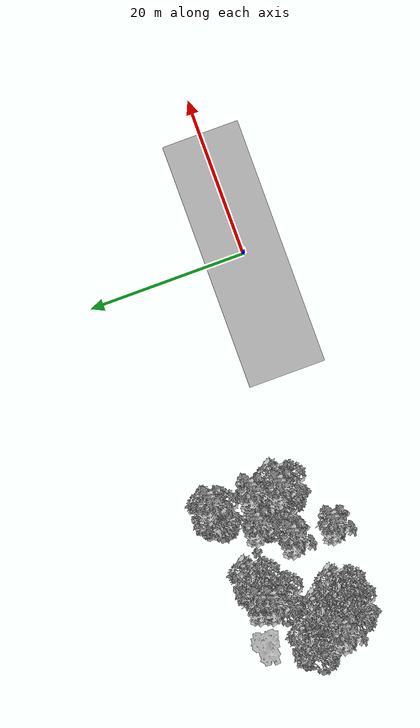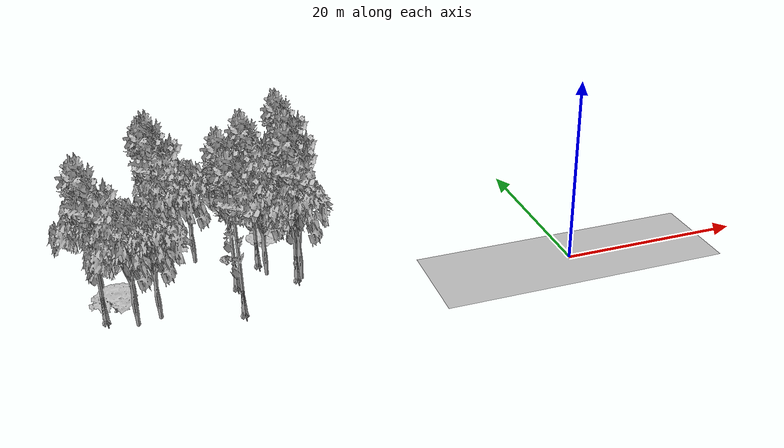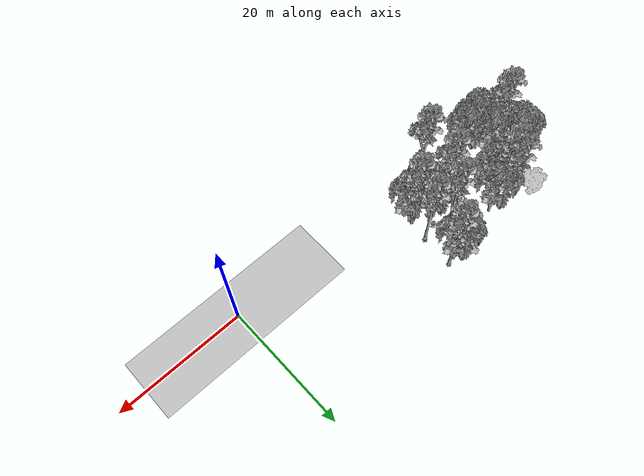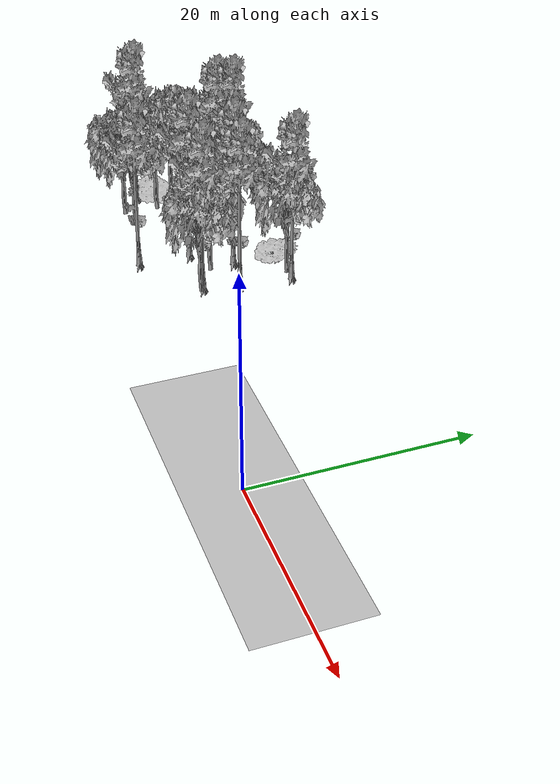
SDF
<sdf version="1.7">
 <world name="default">
  <model name="ground_plane">
   <static>1</static>
   <link name="link">
    <collision name="collision">
     <pose>-50 0 0 0 -0 0</pose>
     <geometry><plane><normal>0 0 1</normal><size>100 100</size></plane></geometry>
     <surface><contact><ode><min_depth>0.01</min_depth><max_vel>0</max_vel></ode></contact></surface>
    </collision>
    <visual name="grass">
     <cast_shadows>0</cast_shadows>
     <geometry>
      <mesh>
       <scale>0.5814285714285714 0.18142857142857144 0.1</scale>
       <uri>file://grass_plane/meshes/grass_plane.dae</uri>
      </mesh>
     </geometry>
    </visual>
   </link>
  </model>
  <model name="Tree 3">
   <static>1</static>
   <pose>-31.481385527673343 7.390100889595605 0 1.57079 -0 0</pose>
   <link name="link">
    <collision name="collision">
     <geometry><mesh><scale>3.5 5 3.5</scale><uri>model://tree_2/meshes/tree_2.obj</uri></mesh></geometry>
    </collision>
    <visual name="visual">
     <geometry><mesh><scale>3.5 5 3.5</scale><uri>model://tree_2/meshes/tree_2.obj</uri></mesh></geometry>
    </visual>
   </link>
  </model>
  <model name="Tree 8">
   <static>1</static>
   <pose>-34.72252910490241 6.281720493063954 0 1.57079 -0 0</pose>
   <link name="link">
    <collision name="collision">
     <geometry><mesh><scale>3.5 5 3.5</scale><uri>model://tree_9/meshes/tree_9.obj</uri></mesh></geometry>
    </collision>
    <visual name="visual">
     <geometry><mesh><scale>3.5 5 3.5</scale><uri>model://tree_9/meshes/tree_9.obj</uri></mesh></geometry>
    </visual>
   </link>
  </model>
  <model name="Tree 14">
   <static>1</static>
   <pose>-40.880451458060946 12.764865354557013 0 1.57079 -0 0</pose>
   <link name="link">
    <collision name="collision">
     <geometry><mesh><scale>3.5 5 3.5</scale><uri>model://tree_9/meshes/tree_9.obj</uri></mesh></geometry>
    </collision>
    <visual name="visual">
     <geometry><mesh><scale>3.5 5 3.5</scale><uri>model://tree_9/meshes/tree_9.obj</uri></mesh></geometry>
    </visual>
   </link>
  </model>
  <model name="Tree 33">
   <static>1</static>
   <pose>-38.20391990140483 12.369561402918748 0 1.57079 -0 0</pose>
   <link name="link">
    <collision name="collision">
     <geometry><mesh><scale>3.5 5 3.5</scale><uri>model://tree_2/meshes/tree_2.obj</uri></mesh></geometry>
    </collision>
    <visual name="visual">
     <geometry><mesh><scale>3.5 5 3.5</scale><uri>model://tree_2/meshes/tree_2.obj</uri></mesh></geometry>
    </visual>
   </link>
  </model>
  <model name="Tree 43">
   <static>1</static>
   <pose>-47.622293033828235 4.44104296170822 0 1.57079 -0 0</pose>
   <link name="link">
    <collision name="collision">
     <geometry><mesh><scale>3.5 5 3.5</scale><uri>model://tree_9/meshes/tree_9.obj</uri></mesh></geometry>
    </collision>
    <visual name="visual">
     <geometry><mesh><scale>3.5 5 3.5</scale><uri>model://tree_9/meshes/tree_9.obj</uri></mesh></geometry>
    </visual>
   </link>
  </model>
  <model name="Tree 49">
   <static>1</static>
   <pose>-46.39853776990978 13.50395326499055 0 1.57079 -0 0</pose>
   <link name="link">
    <collision name="collision">
     <geometry><mesh><scale>3 2 3</scale><uri>model://tree_3/meshes/tree_3.obj</uri></mesh></geometry>
    </collision>
    <visual name="visual">
     <geometry><mesh><scale>3 2 3</scale><uri>model://tree_3/meshes/tree_3.obj</uri></mesh></geometry>
    </visual>
   </link>
  </model>
  <model name="Tree 52">
   <static>1</static>
   <pose>-31.878450718677136 9.904338914191474 0 1.57079 -0 0</pose>
   <link name="link">
    <collision name="collision">
     <geometry><mesh><scale>3.5 5 3.5</scale><uri>model://tree_9/meshes/tree_9.obj</uri></mesh></geometry>
    </collision>
    <visual name="visual">
     <geometry><mesh><scale>3.5 5 3.5</scale><uri>model://tree_9/meshes/tree_9.obj</uri></mesh></geometry>
    </visual>
   </link>
  </model>
  <model name="Tree 65">
   <static>1</static>
   <pose>-44.77162462262486 5.788172271483528 0 1.57079 -0 0</pose>
   <link name="link">
    <collision name="collision">
     <geometry><mesh><scale>3.5 5 3.5</scale><uri>model://tree_2/meshes/tree_2.obj</uri></mesh></geometry>
    </collision>
    <visual name="visual">
     <geometry><mesh><scale>3.5 5 3.5</scale><uri>model://tree_2/meshes/tree_2.obj</uri></mesh></geometry>
    </visual>
   </link>
  </model>
  <model name="Tree 80">
   <static>1</static>
   <pose>-47.72107241561221 8.223956834752286 0 1.57079 -0 0</pose>
   <link name="link">
    <collision name="collision">
     <geometry><mesh><scale>3.5 5 3.5</scale><uri>model://tree_2/meshes/tree_2.obj</uri></mesh></geometry>
    </collision>
    <visual name="visual">
     <geometry><mesh><scale>3.5 5 3.5</scale><uri>model://tree_2/meshes/tree_2.obj</uri></mesh></geometry>
    </visual>
   </link>
  </model>
  <model name="Tree 97">
   <static>1</static>
   <pose>-46.60096022170873 5.637893205361678 0 1.57079 -0 0</pose>
   <link name="link">
    <collision name="collision">
     <geometry><mesh><scale>3 2 3</scale><uri>model://tree_3/meshes/tree_3.obj</uri></mesh></geometry>
    </collision>
    <visual name="visual">
     <geometry><mesh><scale>3 2 3</scale><uri>model://tree_3/meshes/tree_3.obj</uri></mesh></geometry>
    </visual>
   </link>
  </model>
  <model name="Tree 100">
   <static>1</static>
   <pose>-28.53290180158267 5.758255386338558 0 1.57079 -0 0</pose>
   <link name="link">
    <collision name="collision">
     <geometry><mesh><scale>3.5 5 3.5</scale><uri>model://tree_9/meshes/tree_9.obj</uri></mesh></geometry>
    </collision>
    <visual name="visual">
     <geometry><mesh><scale>3.5 5 3.5</scale><uri>model://tree_9/meshes/tree_9.obj</uri></mesh></geometry>
    </visual>
   </link>
  </model>
  <model name="Tree 105">
   <static>1</static>
   <pose>-28.205795705988052 5.442100943099302 0 1.57079 -0 0</pose>
   <link name="link">
    <collision name="collision">
     <geometry><mesh><scale>3.5 5 3.5</scale><uri>model://tree_2/meshes/tree_2.obj</uri></mesh></geometry>
    </collision>
    <visual name="visual">
     <geometry><mesh><scale>3.5 5 3.5</scale><uri>model://tree_2/meshes/tree_2.obj</uri></mesh></geometry>
    </visual>
   </link>
  </model>
  <model name="Tree 107">
   <static>1</static>
   <pose>-44.8014631006795 2.4061692136637305 0 1.57079 -0 0</pose>
   <link name="link">
    <collision name="collision">
     <geometry><mesh><scale>3.5 5 3.5</scale><uri>model://tree_2/meshes/tree_2.obj</uri></mesh></geometry>
    </collision>
    <visual name="visual">
     <geometry><mesh><scale>3.5 5 3.5</scale><uri>model://tree_2/meshes/tree_2.obj</uri></mesh></geometry>
    </visual>
   </link>
  </model>
  <model name="Tree 116">
   <static>1</static>
   <pose>-41.38711423685862 11.309418297176592 0 1.57079 -0 0</pose>
   <link name="link">
    <collision name="collision">
     <geometry><mesh><scale>3.5 5 3.5</scale><uri>model://tree_9/meshes/tree_9.obj</uri></mesh></geometry>
    </collision>
    <visual name="visual">
     <geometry><mesh><scale>3.5 5 3.5</scale><uri>model://tree_9/meshes/tree_9.obj</uri></mesh></geometry>
    </visual>
   </link>
  </model>
  <model name="Tree 124">
   <static>1</static>
   <pose>-30.83074700628439 13.847748730422786 0 1.57079 -0 0</pose>
   <link name="link">
    <collision name="collision">
     <geometry><mesh><scale>4 2.5 4</scale><uri>model://tree_1/meshes/tree_1.obj</uri></mesh></geometry>
    </collision>
    <visual name="visual">
     <geometry><mesh><scale>4 2.5 4</scale><uri>model://tree_1/meshes/tree_1.obj</uri></mesh></geometry>
    </visual>
   </link>
  </model>
  <model name="Tree 131">
   <static>1</static>
   <pose>-42.64318331763628 2.934728769424378 0 1.57079 -0 0</pose>
   <link name="link">
    <collision name="collision">
     <geometry><mesh><scale>3.5 5 3.5</scale><uri>model://tree_2/meshes/tree_2.obj</uri></mesh></geometry>
    </collision>
    <visual name="visual">
     <geometry><mesh><scale>3.5 5 3.5</scale><uri>model://tree_2/meshes/tree_2.obj</uri></mesh></geometry>
    </visual>
   </link>
  </model>
  <model name="Tree 147">
   <static>1</static>
   <pose>-40.73682225995806 10.345407640179054 0 1.57079 -0 0</pose>
   <link name="link">
    <collision name="collision">
     <geometry><mesh><scale>3.5 5 3.5</scale><uri>model://tree_2/meshes/tree_2.obj</uri></mesh></geometry>
    </collision>
    <visual name="visual">
     <geometry><mesh><scale>3.5 5 3.5</scale><uri>model://tree_2/meshes/tree_2.obj</uri></mesh></geometry>
    </visual>
   </link>
  </model>
  <model name="Tree 159">
   <static>1</static>
   <pose>-34.773159055554395 1.1851932167489636 0 1.57079 -0 0</pose>
   <link name="link">
    <collision name="collision">
     <geometry><mesh><scale>3.5 5 3.5</scale><uri>model://tree_9/meshes/tree_9.obj</uri></mesh></geometry>
    </collision>
    <visual name="visual">
     <geometry><mesh><scale>3.5 5 3.5</scale><uri>model://tree_9/meshes/tree_9.obj</uri></mesh></geometry>
    </visual>
   </link>
  </model>
  <model name="Tree 161">
   <static>1</static>
   <pose>-27.799141274970218 9.21289764393649 0 1.57079 -0 0</pose>
   <link name="link">
    <collision name="collision">
     <geometry><mesh><scale>3.5 5 3.5</scale><uri>model://tree_9/meshes/tree_9.obj</uri></mesh></geometry>
    </collision>
    <visual name="visual">
     <geometry><mesh><scale>3.5 5 3.5</scale><uri>model://tree_9/meshes/tree_9.obj</uri></mesh></geometry>
    </visual>
   </link>
  </model>
  <model name="Tree 164">
   <static>1</static>
   <pose>-28.555615508940317 14.22195077739795 0 1.57079 -0 0</pose>
   <link name="link">
    <collision name="collision">
     <geometry><mesh><scale>3.5 5 3.5</scale><uri>model://tree_2/meshes/tree_2.obj</uri></mesh></geometry>
    </collision>
    <visual name="visual">
     <geometry><mesh><scale>3.5 5 3.5</scale><uri>model://tree_2/meshes/tree_2.obj</uri></mesh></geometry>
    </visual>
   </link>
  </model>
  <model name="Tree 166">
   <static>1</static>
   <pose>-27.497922273290225 14.343025068394095 0 1.57079 -0 0</pose>
   <link name="link">
    <collision name="collision">
     <geometry><mesh><scale>3.5 5 3.5</scale><uri>model://tree_9/meshes/tree_9.obj</uri></mesh></geometry>
    </collision>
    <visual name="visual">
     <geometry><mesh><scale>3.5 5 3.5</scale><uri>model://tree_9/meshes/tree_9.obj</uri></mesh></geometry>
    </visual>
   </link>
  </model>
  <model name="Bush 0">
   <static>1</static>
   <pose>-35.00288870254124 11.014117656962181 0 1.57079 -0 0</pose>
   <link name="link">
    <collision name="collision">
     <geometry><mesh><scale>2 2 2</scale><uri>model://bush_3/meshes/bush_3.obj</uri></mesh></geometry>
     <surface><contact><collide_without_contact>false</collide_without_contact></contact></surface>
    </collision>
    <visual name="visual">
     <geometry><mesh><scale>2 2 2</scale><uri>model://bush_3/meshes/bush_3.obj</uri></mesh></geometry>
    </visual>
   </link>
  </model>
 </world>
</sdf>
